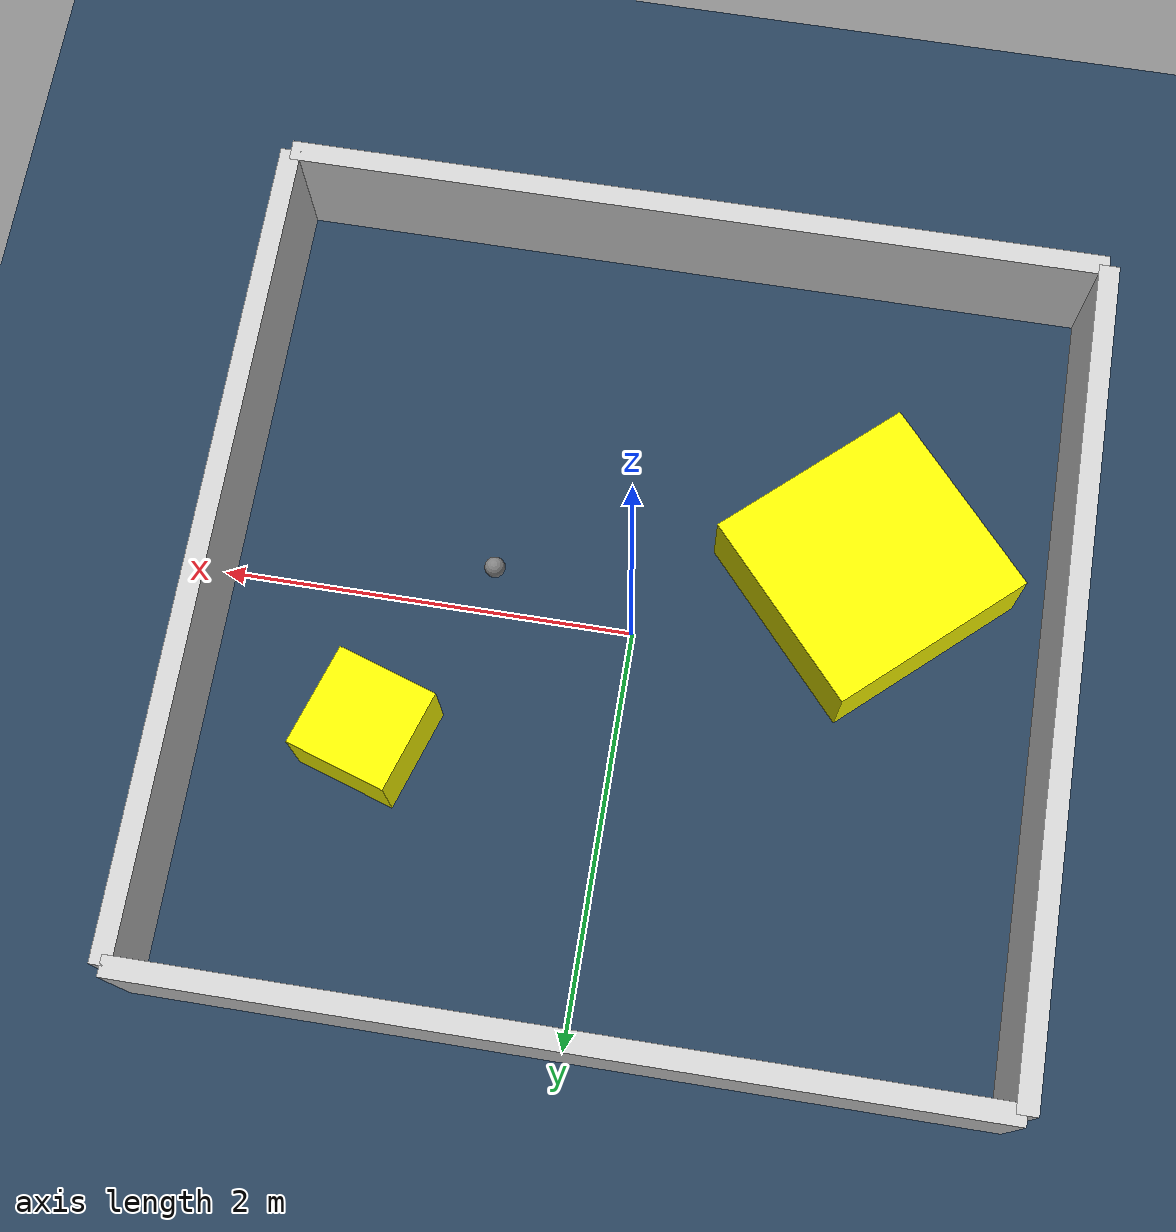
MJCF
<?xml version="1.0" ?>
<mujoco model="generated_environment">
  <option timestep="0.01" integrator="RK4" cone="elliptic"/>
  <default>
    <geom density="1"/>
  </default>
  <asset>
    <texture builtin="gradient" height="3072" rgb1="0.3 0.5 0.7" rgb2="0 0 0" type="skybox" width="512"/>
    <texture builtin="checker" height="300" mark="edge" markrgb="0.8 0.8 0.8" name="groundplane" rgb1="0.2 0.3 0.4" rgb2="0.1 0.2 0.3" type="2d" width="300"/>
    <material name="groundplane" reflectance="0.2" texrepeat="5 5" texture="groundplane" texuniform="true"/>
    <material name="robot" rgba="0.0 1.0 0.0 1"/>
  </asset>
  <worldbody>
    <light dir="0 0 -1" directional="true" pos="0 0 1.5"/>
    <geom condim="4" friction="1.0 0.005 0.001" material="groundplane" name="floor" size="0 0 0.05" type="plane"/>
    <body name="walls">
      <geom name="wall_1" condim="4" pos="-2.0 0.0 0.3" rgba="0.800000011920929 0.800000011920929 0.800000011920929 1.0" size="0.05 2.0 0.3" type="box"/>
      <geom name="wall_2" condim="4" pos="2.0 0.0 0.3" rgba="0.800000011920929 0.800000011920929 0.800000011920929 1.0" size="0.05 2.0 0.3" type="box"/>
      <geom name="wall_3" condim="4" pos="0.0 -2.0 0.3" rgba="0.800000011920929 0.800000011920929 0.800000011920929 1.0" size="2.0 0.05 0.3" type="box"/>
      <geom name="wall_4" condim="4" pos="0.0 2.0 0.3" rgba="0.800000011920929 0.800000011920929 0.800000011920929 1.0" size="2.0 0.05 0.3" type="box"/>
    </body>
    <body name="robot">
      <joint name="joint_x" type="slide" pos="0 0 0" axis="1 0 0"/>
      <joint name="joint_y" type="slide" pos="0 0 0" axis="0 1 0"/>
      <geom name="robot" type="sphere" pos="0.6876034752295888 -0.16917365015317976 0.2" size="0.05" mass="5." friction="1.0 0.005 0.0001" condim="4"/>
      <site name="sensor_ball"/>
    </body>
    <body name="obstacle_1_movable">
      <geom name="obstacle_1_movable" condim="4" pos="-1.06544881895869 -0.44734656941135653 0.2" euler="0 0 311.97525721321216" friction="1.0 0.005 0.001" rgba="1 1 0 1" size="0.5130468696446966 0.5252204305389918 0.2" type="box" mass="0.1"/>
      <joint type="free"/>
    </body>
    <body name="obstacle_2_movable">
      <geom name="obstacle_2_movable" condim="4" pos="1.139728468248633 0.7019447296643657 0.2" euler="0 0 252.1722435001065" friction="1.0 0.005 0.001" rgba="1 1 0 1" size="0.2534192754683491 0.2503735556607352 0.2" type="box" mass="0.1"/>
      <joint type="free"/>
    </body>
  </worldbody>
  <actuator>
    <motor name="actuator_x" joint="joint_x" gear="1" ctrlrange="-1 1"/>
    <motor name="actuator_y" joint="joint_y" gear="1" ctrlrange="-1 1"/>
  </actuator>
</mujoco>
